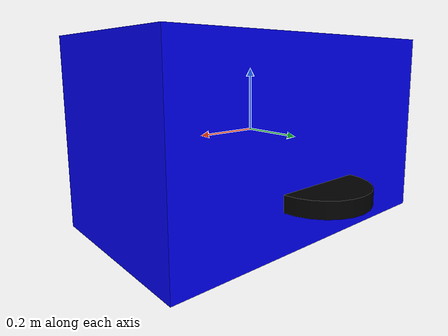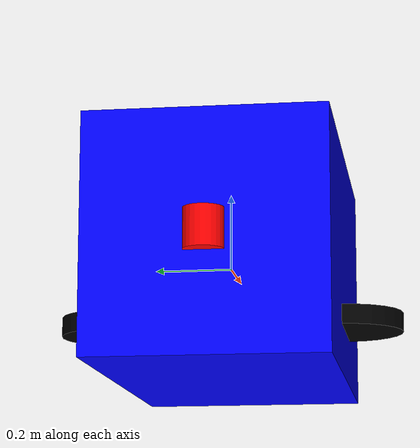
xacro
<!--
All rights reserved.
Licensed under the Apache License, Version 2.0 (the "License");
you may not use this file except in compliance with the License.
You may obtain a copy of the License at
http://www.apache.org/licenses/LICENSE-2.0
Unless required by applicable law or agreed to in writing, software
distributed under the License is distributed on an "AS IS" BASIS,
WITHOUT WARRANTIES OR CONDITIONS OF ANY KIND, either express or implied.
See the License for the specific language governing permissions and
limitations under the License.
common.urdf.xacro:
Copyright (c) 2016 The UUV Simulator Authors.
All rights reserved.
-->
<?xml version="1.0"?>

<robot name="ky3" xmlns:xacro="http://www.ros.org/wiki/xacro" >
  <xacro:arg name="debug" default="0"/>
  <xacro:arg name="namespace" default="ky3_origin"/>
  <xacro:arg name="inertial_reference_frame" default="world"/>

  <!-- base_link according to ROS conventions: x forward, z up -->
  <link name="$(arg namespace)/base_link">
    <inertial>
      <mass value="19.4"/>
      <origin xyz="0 0 0" rpy="0 0 0"/>
      <inertia ixx="0.099" ixy="0" ixz="0.0056" iyy="0.129" iyz="0" izz="0.16"/>
    </inertial>
    <visual>
      <geometry>
        <box size="1 0.6 0.6"/>
      </geometry>
      <material name="blue">
        <color rgba="0 0 1 1"/>
      </material>
    </visual>
    <collision>
      <geometry>
        <box size="1 0.6 0.6"/>
      </geometry>
    </collision>
  </link>

  <!-- Left wheel -->
  <link name="$(arg namespace)/left_wheel">
    <visual>
      <geometry>
        <cylinder radius="0.15" length="0.05"/>
      </geometry>
      <material name="black">
        <color rgba="0 0 0 1"/>
      </material>
    </visual>
    <collision>
      <geometry>
        <cylinder radius="0.15" length="0.05"/>
      </geometry>
    </collision>
    <inertial>
      <mass value="0.2"/>
      <inertia ixx="0.01" ixy="0" ixz="0" iyy="0.01" iyz="0" izz="0.01"/>
      <origin xyz="0 0 0" rpy="0 0 0"/>
    </inertial>
  </link>

  <!-- Right wheel -->
  <link name="$(arg namespace)/right_wheel">
    <visual>
      <geometry>
        <cylinder radius="0.15" length="0.05"/>
      </geometry>
      <material name="black">
        <color rgba="0 0 0 1"/>
      </material>
    </visual>
    <collision>
      <geometry>
        <cylinder radius="0.15" length="0.05"/>
      </geometry>
    </collision>
    <inertial>
      <mass value="0.2"/>
      <inertia ixx="0.01" ixy="0" ixz="0" iyy="0.01" iyz="0" izz="0.01"/>
      <origin xyz="0 0 0" rpy="0 0 0"/>
    </inertial>
  </link>

  <!-- Thruster -->
  <link name="$(arg namespace)/thruster_link">
    <visual>
      <geometry>
        <cylinder radius="0.05" length="0.1"/>
      </geometry>
      <material name="red">
        <color rgba="1 0 0 1"/>
      </material>
    </visual>
    <collision>
      <geometry>
        <cylinder radius="0.05" length="0.1"/>
      </geometry>
    </collision>
    <inertial>
      <mass value="0.2"/>
      <inertia ixx="0.001" ixy="0" ixz="0" iyy="0.001" iyz="0" izz="0.001"/>
      <origin xyz="0 0 0" rpy="0 0 0"/>
    </inertial>
  </link>

  <!-- Left wheel joint -->
  <joint name="$(arg namespace)/left_wheel_joint" type="continuous">
    <parent link="$(arg namespace)/base_link"/>
    <child link="$(arg namespace)/left_wheel"/>
    <origin xyz="0 0.3 -0.15" rpy="0 0 0"/>
    <axis xyz="0 1 0"/>
  </joint>

  <!-- Right wheel joint -->
  <joint name="$(arg namespace)/right_wheel_joint" type="continuous">
    <parent link="$(arg namespace)/base_link"/>
    <child link="$(arg namespace)/right_wheel"/>
    <origin xyz="0 -0.3 -0.15" rpy="0 0 0"/>
    <axis xyz="0 1 0"/>
  </joint>

  <!-- Thruster joint -->
  <joint name="$(arg namespace)/thruster_joint" type="fixed">
    <parent link="$(arg namespace)/base_link"/>
    <child link="$(arg namespace)/thruster_link"/>
    <origin xyz="-0.5 0 0" rpy="0 0 0"/>
  </joint>

  <gazebo>
    <plugin name="uuv_plugin" filename="libuuv_underwater_object_ros_plugin.so">
      <!-- Hydro parameters for the vehicle -->
      <fluid_density>1028.0</fluid_density>
      <flow_velocity_topic>hydrodynamics/current_velocity</flow_velocity_topic>
      <debug>$(arg debug)</debug>

      <link name="$(arg namespace)/base_link">
        <!--Volume, see p.31 in Berg2012-->
        <volume>0.020</volume>

        <center_of_buoyancy>0.0 0.0 0.01</center_of_buoyancy>
        <hydrodynamic_model>
          <type>fossen</type>
          <!-- Added mass: see p.28 in Berg2012 -->
          <added_mass>
            5.5 0 0 0 0 0
            0 12.7 0 0 0 0
            0 0 14.57 0 0 0
            0 0 0 0.12 0 0
            0 0 0 0 0.12 0
            0 0 0 0 0 0.12
          </added_mass>
          <!--Linear damping: see p.31 in Berg2012-->
          <!-- Non-linear damping: see p.30 in Berg2012 -->

          <linear_damping>
            -4.03 -6.22 -5.18 -0.07 -0.07 -0.07
          </linear_damping>
          <quadratic_damping>
            -18.18 -21.66 -36.99 -1.55 -1.55 -1.55
          </quadratic_damping>
        </hydrodynamic_model>
      </link>
    </plugin>
  </gazebo>

  <!-- Define thrusters for propulsion -->
  <!--xacro:property name="prop_mesh_file" value="file://$(find bluerov2h_description)/meshes/Propeller.dae"/-->
  <!-- Common values, colors, converstion, standard shapes/inertia etc.
      Dependency for the thruster_snippets.xacro-->
  <xacro:include filename="$(find uuv_descriptions)/urdf/common.urdf.xacro"/>
  <!--Various thruster models-->
  <xacro:include filename="$(find uuv_gazebo_ros_plugins)/urdf/thruster_snippets.xacro"/>

  <gazebo>
    <plugin name="uuv_joint_state_publisher" filename="libuuv_joint_state_publisher.so">
      <robotNamespace>$(arg namespace)</robotNamespace>
      <updateRate>50</updateRate>
    </plugin>
  </gazebo>
</robot>

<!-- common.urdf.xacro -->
<robot xmlns:xacro="http://www.ros.org/wiki/xacro" >
  <!-- Conversion factor: radian = d2r*degrees -->
  <xacro:property name="d2r" value="0.01745329"/>

  <!-- 亚临界流阻力系数Drag coefficient for sub-critical flow Re<2*10^5 -->
  <!-- From Antonelli - Underwater Robots -->
  <xacro:property name="cd_subcritical" value="1" />

  <!-- 亚临界流升力系数Lift coefficient for sub-critical flow Re<2*10^5 -->
  <!-- From Antonelli - Underwater Robots -->
  <xacro:property name="cl_subcritical" value="5" />

  <!-- Some pretty colors -->
  <material name="blue">
		<color rgba="0.0 0.0 0.8 1.0"/>
	</material>

	<material name="green">
		<color rgba="0.0 0.8 0.0 1.0"/>
	</material>

	<material name="grey">
		<color rgba="0.7 0.7 0.7 1.0"/>
	</material>

	<material name="grey2">
		<color rgba="0.9 0.9 0.9 1.0"/>
	</material>

	<material name="red">
		<color rgba="0.8 0.0 0.0 1.0"/>
	</material>

	<material name="orange">
		<color rgba="1.0 0.5 0.0 1.0"/>
	</material>

	<material name="white">
		<color rgba="1.0 1.0 1.0 1.0"/>
	</material>

	<material name="black">
		<color rgba="0.05 0.05 0.05 1.0"/>
	</material>

  <!-- 附加质量 Added-mass for a sphere -->
  <xacro:macro name="added_mass_sphere" params="radius rho">
    <added_mass>
      ${2/3 * rho * pi * radius*radius*radius} 0 0 0 0 0
      0 ${2/3 * rho * pi * radius*radius*radius} 0 0 0 0
      0 0 ${2/3 * rho * pi * radius*radius*radius} 0 0 0
      0 0 0 0 0 0
      0 0 0 0 0 0
      0 0 0 0 0 0
    </added_mass>
  </xacro:macro>

  <!-- 流体中运动球体阻力的简单二次阻尼系数Simple quadratic damping coefficients for the drag forces of a sphere moving in fluid-->
  <xacro:macro name="quad_damping_sphere" params="radius rho cd">
    <quadratic_damping>
      ${-0.5 * rho * cd * pi * radius*radius} ${-0.5 * rho * cd * pi * radius*radius} ${-0.5 * rho * cd * pi * radius*radius} 0 0 0
    </quadratic_damping>
  </xacro:macro>

  <!-- Added-mass for a cylinder (from Scholberg, 1994)-->
  <xacro:macro name="added_mass_cylinder" params="mass radius length rho">
    ${0.1 * mass} 0 0 0 0 0
    0 ${pi * radius*radius * length * rho} 0 0 0 0
    0 0 ${pi * radius*radius * length * rho} 0 0 0
    0 0 0 0 0 0
    0 0 0 0 ${1/12 * pi * rho * radius*radius * length*3} 0
    0 0 0 0 0 ${1/12 * pi * rho * radius*radius * length*3}
  </xacro:macro>

  <!-- Macro for the inertial properties of a box -->
  <xacro:macro name="box_inertial" params="x y z mass *origin">
    <inertial>
      <mass value="${mass}" />
      <xacro:insert_block name="origin" />
      <inertia ixx="${0.0833333 * mass * (y*y + z*z)}" ixy="0.0" ixz="0.0"
             iyy="${0.0833333 * mass * (x*x + z*z)}" iyz="0.0"
             izz="${0.0833333 * mass * (x*x + y*y)}" />
    </inertial>
  </xacro:macro>

  <!-- Cylinder collision -->
  <xacro:macro name="cylinder_collision" params="radius length">
    <collision>
      <origin xyz="0 0 ${length/2}" rpy="0 0 0"/>
      <geometry>
        <cylinder radius="${radius}" length="${length}"/>
      </geometry>
    </collision>
  </xacro:macro>

  <!-- Cylinder inertial tensor -->
  <xacro:macro name="cylinder_inertia" params="mass radius length">
    <inertial>
      <origin xyz="0 0 ${length/2}" rpy="0 0 0" />
      <mass value="${mass}" />
      <inertia  ixx="${mass*radius*radius / 4  + mass*length*length / 12}" ixy="0.0"  ixz="0.0"
                iyy="${mass*radius*radius / 4  + mass*length*length / 12}" iyz="0.0"
                izz="${mass*radius*radius / 2}" />
    </inertial>
  </xacro:macro>

  <!-- Link Macro -->
  <xacro:macro name="create_link" params="name color mesh *collision *inertia">
    <link name="${name}">
      <visual>
        <geometry>
          <mesh filename="${mesh}" />
        </geometry>
        <material name="${color}" />
      </visual>
      <xacro:insert_block name="collision" />
      <xacro:insert_block name="inertia" />
    </link>
  </xacro:macro>

  <!-- 一个较小的虚拟链接使模型在Gazebo中爆炸A smaller dummy link makes the model to explode in Gazebo -->
  <xacro:macro name="dummy_link" params="name">
    <link name="${name}">
      <visual>
        <geometry>
          <box size="0.01 0.01 0.01"/>
        </geometry>
      </visual>

      <collision>
        <geometry>
          <box size="0.01 0.01 0.01"/>
        </geometry>
      </collision>

      <inertial>
        <mass value="0.001" />
        <origin xyz="0 0 0" rpy="0 0 0"/>
        <inertia ixx="0.000000017" ixy="0.0" ixz="0.0"
               iyy="0.000000017" iyz="0.0"
               izz="0.000000017" />
      </inertial>
    </link>
  </xacro:macro>

  <!-- 用于应该没有质量的链路的虚拟惯性块Dummy inertial block for links that should be mass-less -->
  <xacro:macro name="no_inertial">
    <xacro:box_inertial x="0" y="0" z="0" mass="0.0001">
      <origin xyz="0 0 0" rpy="0 0 0"/>
    </xacro:box_inertial>
  </xacro:macro>

</robot>
